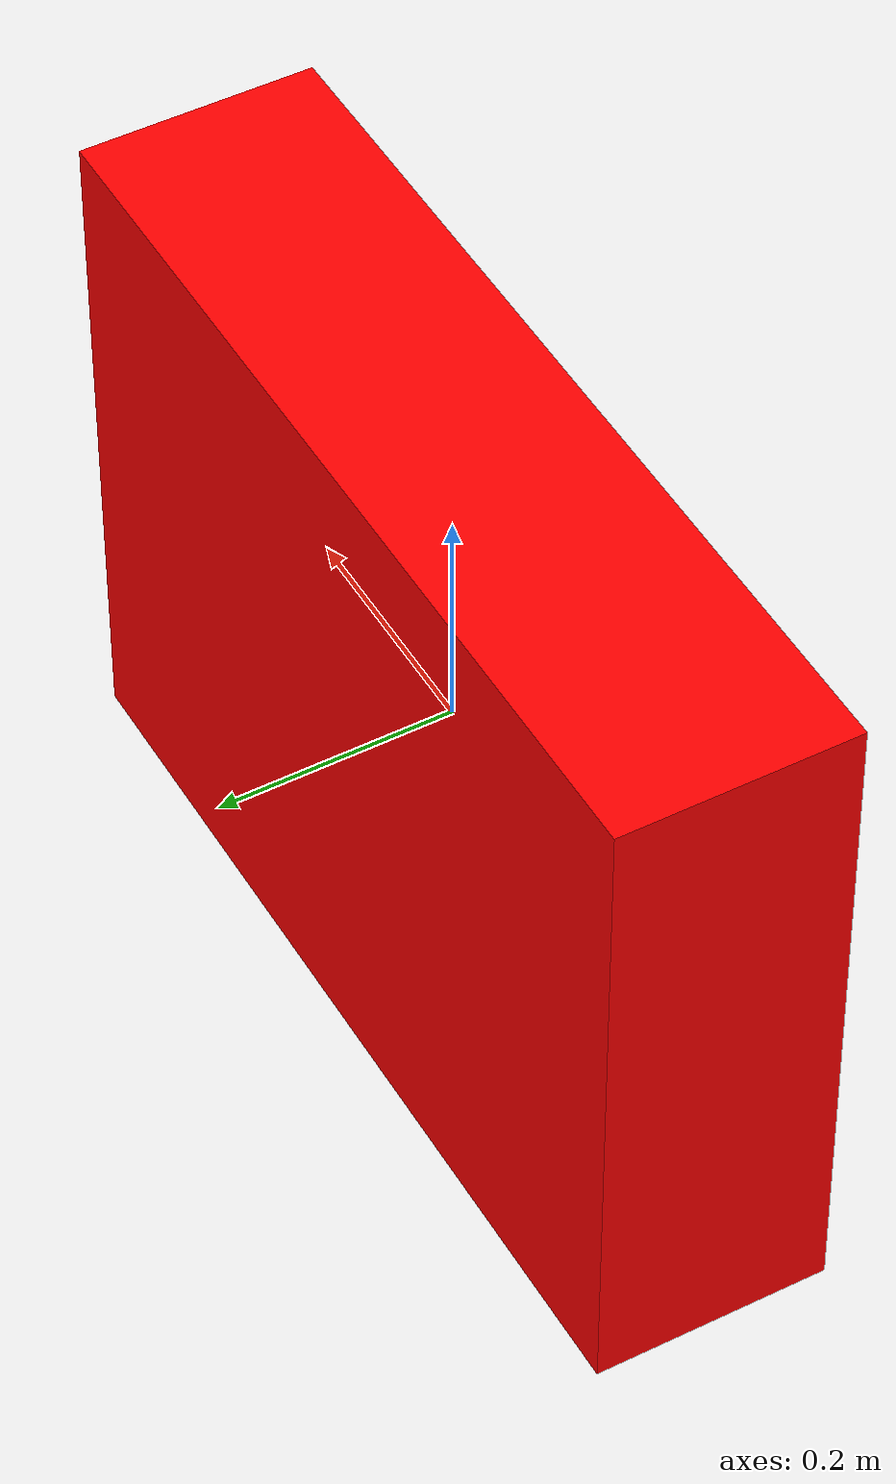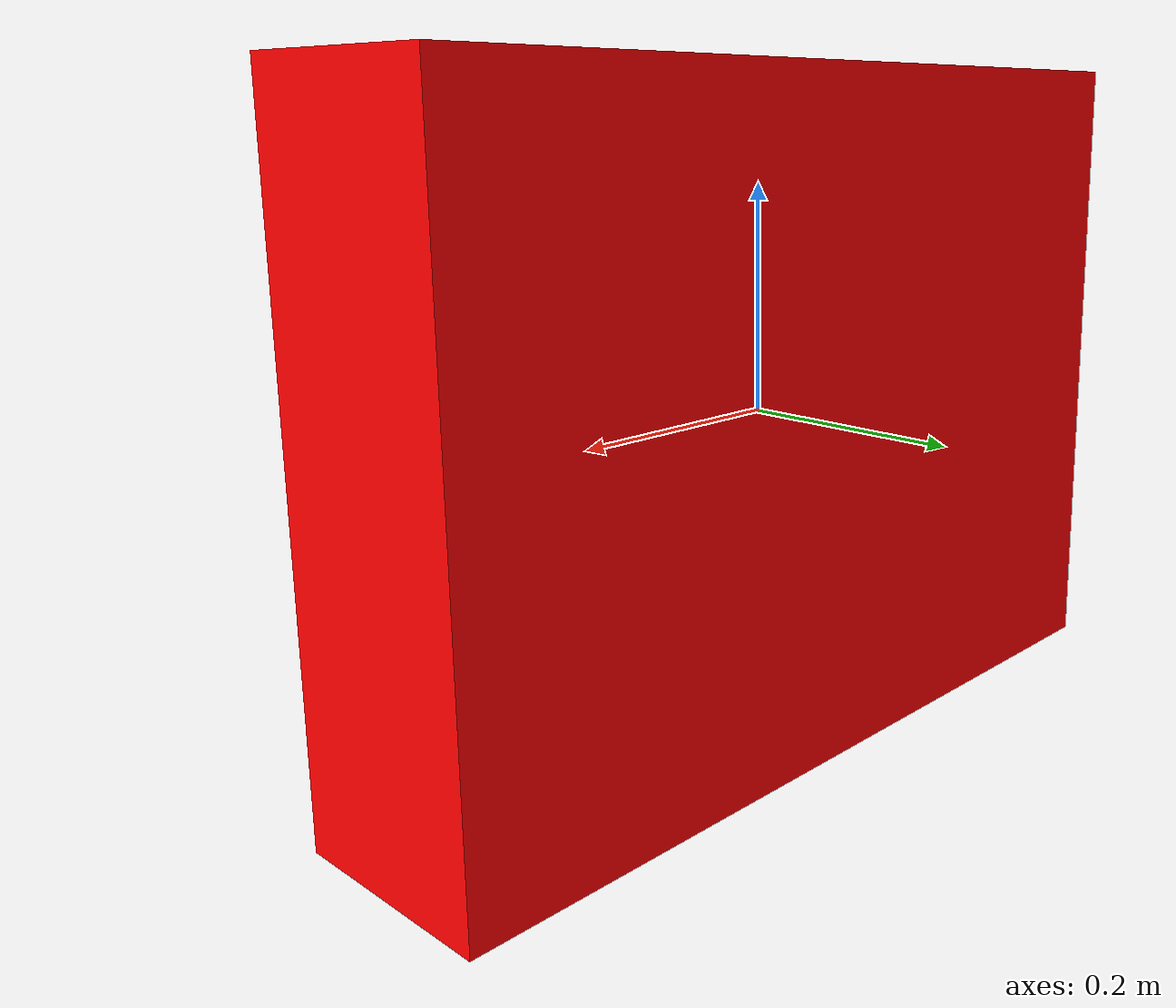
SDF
<sdf version="1.6">
  <model name="other_red_obstacle">
    <static>true</static>
    <link name="link">
      <visual name="visual">
        <geometry>
          <box>
            <size>0.8 0.2 0.6</size> <!-- Size of the box: length, width, height -->
          </box>
        </geometry>
        <material>
          <ambient>1 0 0 1</ambient> <!-- Red color -->
          <diffuse>1 0 0 1</diffuse> <!-- Red color -->
        </material>
      </visual>
      <collision name="collision">
        <geometry>
          <box>
            <size>0.8 0.2 0.6</size>
          </box>
        </geometry>
      </collision>
    </link>
  </model>
</sdf>
